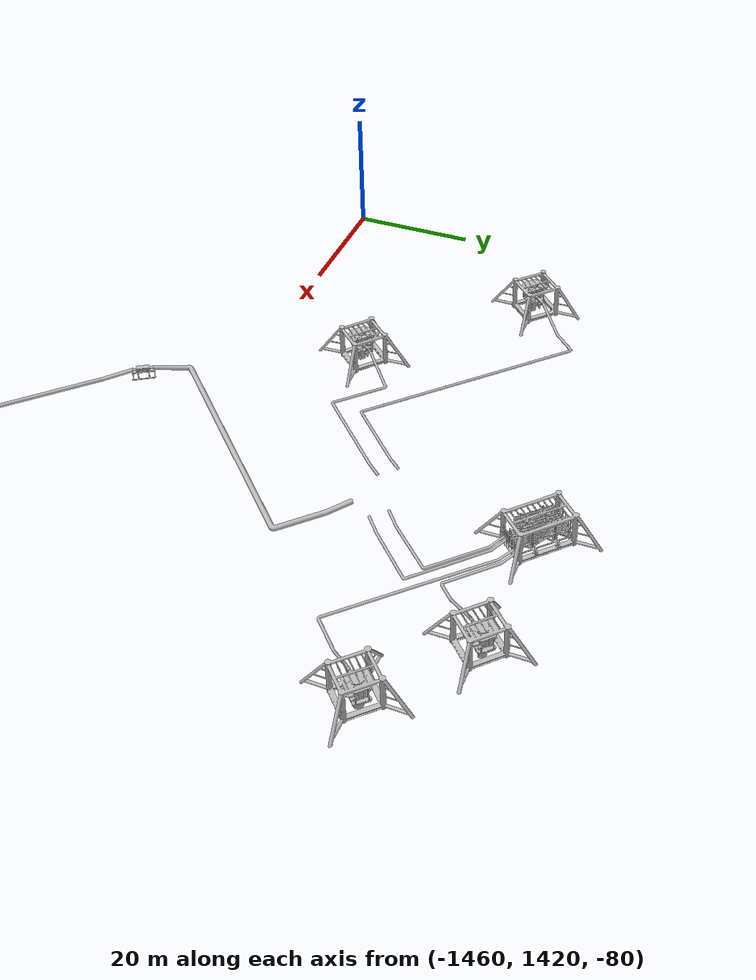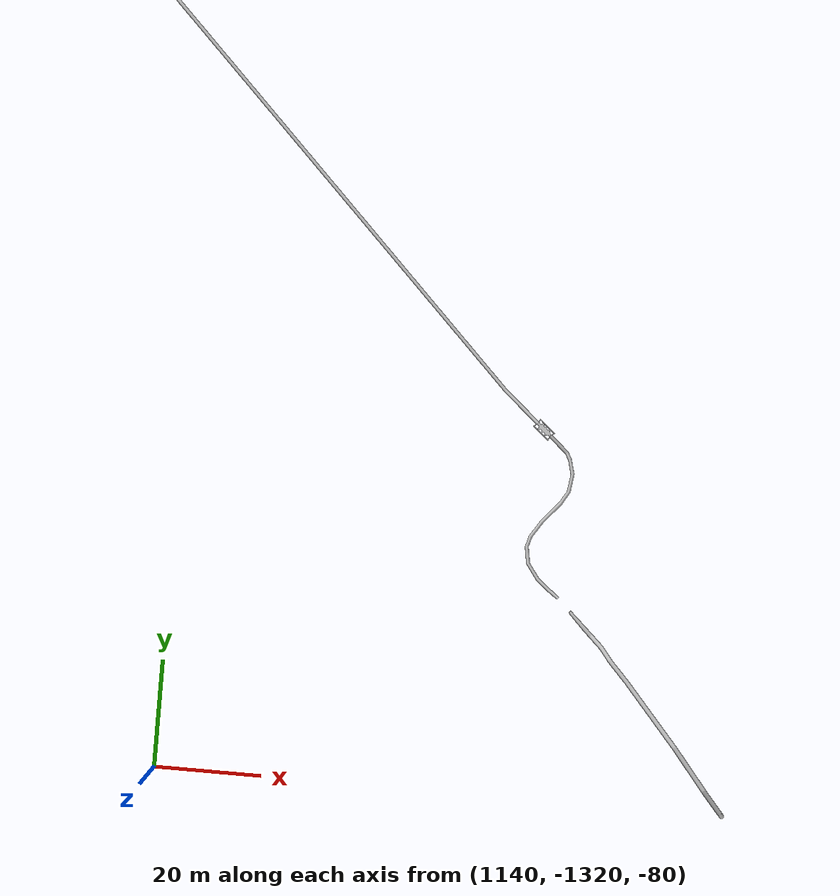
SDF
<sdf version="1.6">
 <world name="maria_layout">
  <include><uri>model://maria_layout_pipes</uri><pose>0 0 -87 0 0 0</pose></include>
  <include><uri>model://cooler</uri><pose>-1398.4093 1473.58337 -87 0 0 0.803130709</pose></include>
  <include>
   <uri>model://xmastree</uri>
   <name>xmastree_1</name>
   <pose>-1362.89404 1460.14209 -87 0 0 -2.37326381</pose>
  </include>
  <include>
   <uri>model://xmastree</uri>
   <name>xmastree_2</name>
   <pose>-1376.56665 1472.31104 -87 0 0 3.932540964</pose>
  </include>
  <include>
   <uri>model://xmastree</uri>
   <name>xmastree_3</name>
   <pose>-1429.50513 1432.78442 -87 0 0 0.844128493</pose>
  </include>
  <include>
   <uri>model://xmastree</uri>
   <name>xmastree_4</name>
   <pose>-1453.10754 1455.74634 -87 0 0 0.799814583</pose>
  </include>
  <include>
   <uri>model://target_box</uri>
   <name>target_box_1</name>
   <pose>-1411.91504 1400.22058 -87 0 0 0.560896462</pose>
  </include>
  <include>
   <uri>model://target_box</uri>
   <name>target_box_2</name>
   <pose>1207.80811 -1250.99963 -87 0 0 0.860604401</pose>
  </include>
 </world>
</sdf>

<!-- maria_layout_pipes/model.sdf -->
<sdf version="1.4">
    <model name="maria_layout_pipes">
        <pose>0 0 0 0 0 0</pose>
        <static>true</static>
        <link name="maria_layout_pipes_body">
            <visual name="visual">
                <geometry>
                    <mesh>
                        <uri>model://maria_layout_pipes/visual.osgb</uri>
                    </mesh>
                </geometry>
            </visual>
            <collision name="collision">
                <geometry>
                    <mesh>
                        <uri>model://maria_layout_pipes/collision.stl</uri>
                    </mesh>
                </geometry>
            </collision>
            <inertial>
                <pose>0 0 -1 0 0 0</pose>
                <inertia>
                    <ixx>0.0</ixx>
                    <ixy>0</ixy>
                    <ixz>0.0</ixz>
                    <iyy>0.0</iyy>
                    <iyz>0</iyz>
                    <izz>0.0</izz>
                </inertia>
                <mass>1.0</mass>
            </inertial>
        </link>
    </model>
</sdf>

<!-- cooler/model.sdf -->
<sdf version="1.4">
    <model name="cooler">
        <pose>0 0 0 0 0 0</pose>
        <static>true</static>
        <link name="cooler_body">
            <visual name="visual">
                <geometry>
                    <mesh>
                        <uri>model://cooler/visual.osgb</uri>
                    </mesh>
                </geometry>
            </visual>
            <collision name="collision">
                <geometry>
                    <mesh>
                        <uri>model://cooler/collision.stl</uri>
                    </mesh>
                </geometry>
            </collision>
            <inertial>
                <pose>0 0 -1 0 0 0</pose>
                <inertia>
                    <ixx>0.0</ixx>
                    <ixy>0</ixy>
                    <ixz>0.0</ixz>
                    <iyy>0.0</iyy>
                    <iyz>0</iyz>
                    <izz>0.0</izz>
                </inertia>
                <mass>1.0</mass>
            </inertial>
        </link>
    </model>
</sdf>

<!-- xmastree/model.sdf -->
<sdf version="1.4">
    <model name="xmastree">
        <pose>0 0 0 0 0 0</pose>
        <static>true</static>
        <link name="xmastree_body">
            <visual name="visual">
                <geometry>
                    <mesh>
                        <uri>model://xmastree/visual.osgb</uri>
                    </mesh>
                </geometry>
            </visual>
            <collision name="collision">
                <geometry>
                    <mesh>
                        <uri>model://xmastree/collision.stl</uri>
                    </mesh>
                </geometry>
            </collision>
            <inertial>
                <pose>0 0 -1 0 0 0</pose>
                <inertia>
                    <ixx>0.0</ixx>
                    <ixy>0</ixy>
                    <ixz>0.0</ixz>
                    <iyy>0.0</iyy>
                    <iyz>0</iyz>
                    <izz>0.0</izz>
                </inertia>
                <mass>1.0</mass>
            </inertial>
        </link>
    </model>
</sdf>

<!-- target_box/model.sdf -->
<sdf version="1.4">
    <model name="target_box">
        <pose>0 0 0 0 0 0</pose>
        <static>true</static>
        <link name="target_box_body">
            <visual name="visual">
                <geometry>
                    <mesh>
                        <uri>model://target_box/visual.osgb</uri>
                    </mesh>
                </geometry>
            </visual>
            <collision name="collision">
                <geometry>
                    <mesh>
                        <uri>model://target_box/collision.stl</uri>
                    </mesh>
                </geometry>
            </collision>
            <inertial>
                <pose>0 0 -1 0 0 0</pose>
                <inertia>
                    <ixx>0.0</ixx>
                    <ixy>0</ixy>
                    <ixz>0.0</ixz>
                    <iyy>0.0</iyy>
                    <iyz>0</iyz>
                    <izz>0.0</izz>
                </inertia>
                <mass>1.0</mass>
            </inertial>
        </link>
    </model>
</sdf>
